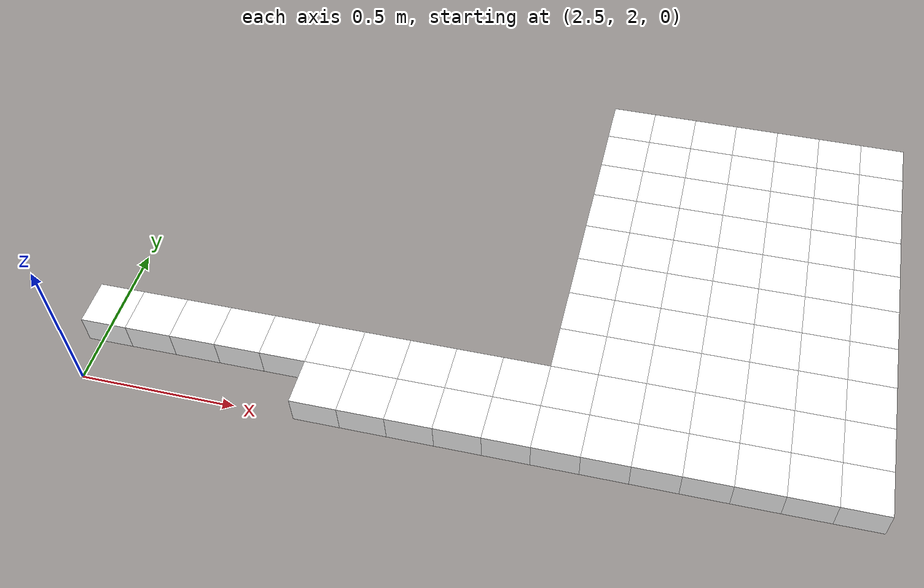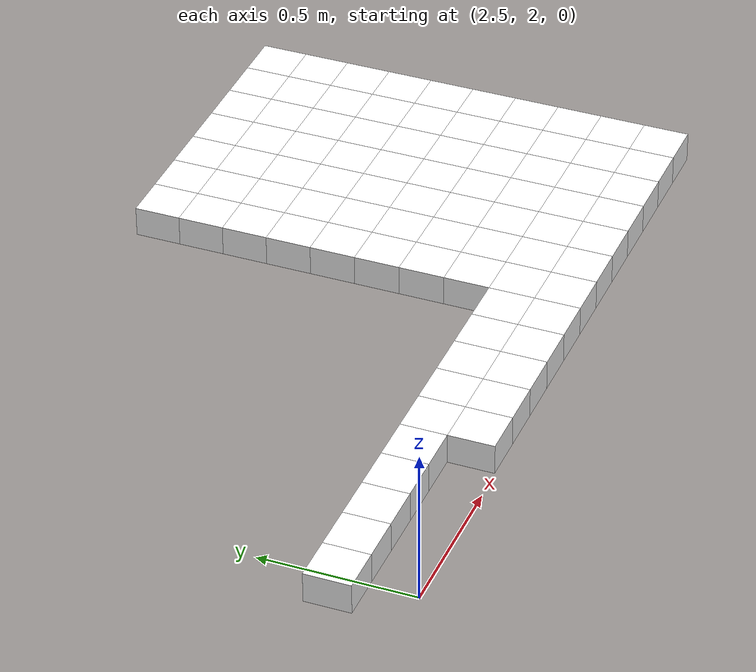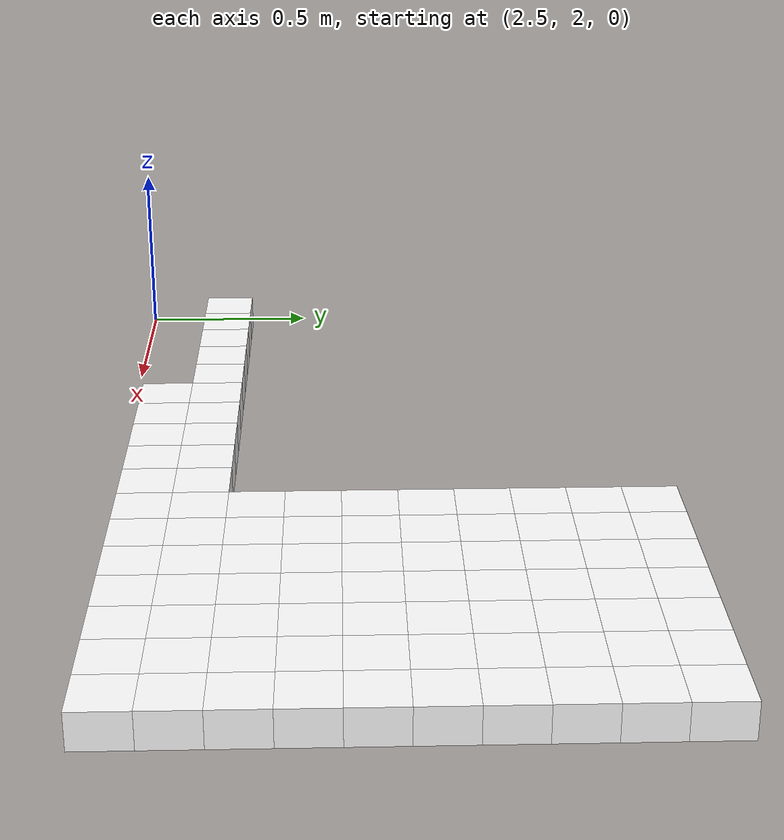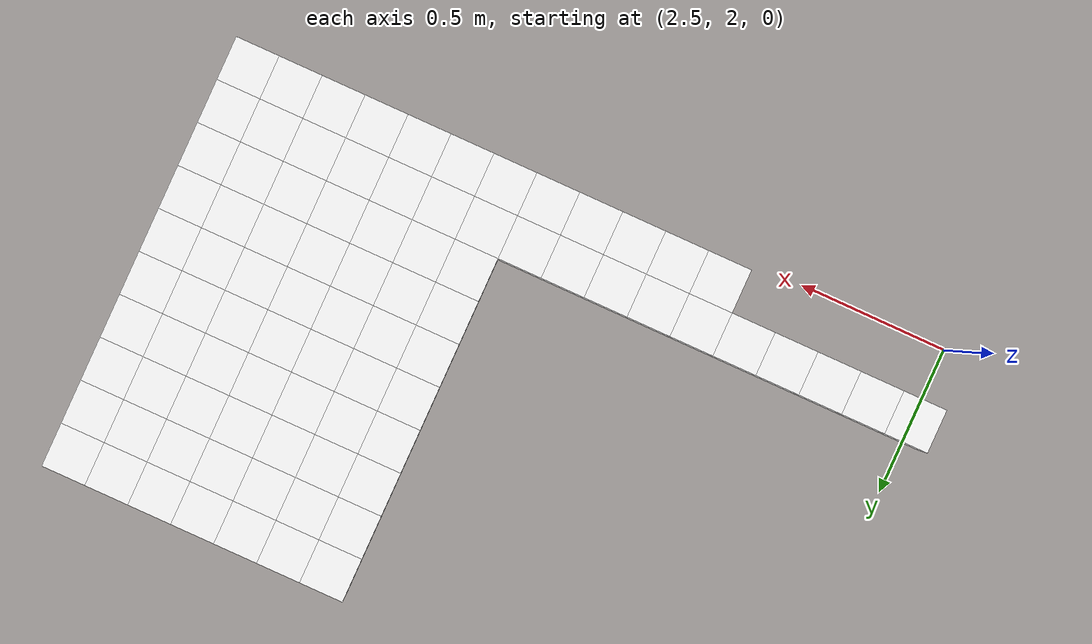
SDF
<sdf version="1.7">
 <world name="default">
  <include><uri>model://sun</uri></include>
  <model name="static_environment">
   <static>true</static>
   <link name="region_435">
    <pose>3.2500000000000027 2.0999999999999996 0.0 0.0 0.0 0.0</pose>
    <collision name="region_435_collision">
     <geometry><box><size>0.15 0.15 0.1</size></box></geometry>
     <surface><friction><ode><mu>1.0</mu><mu2>1.0</mu2></ode></friction></surface>
    </collision>
    <visual name="region_435_visual">
     <geometry><box><size>0.15 0.15 0.1</size></box></geometry>
     <material><ambient>1.0 1.0 1.0 1.0</ambient><diffuse>1.0 1.0 1.0 1.0</diffuse></material>
    </visual>
   </link>
   <link name="region_436">
    <pose>3.400000000000003 2.0999999999999996 0.0 0.0 0.0 0.0</pose>
    <collision name="region_436_collision">
     <geometry><box><size>0.15 0.15 0.1</size></box></geometry>
     <surface><friction><ode><mu>1.0</mu><mu2>1.0</mu2></ode></friction></surface>
    </collision>
    <visual name="region_436_visual">
     <geometry><box><size>0.15 0.15 0.1</size></box></geometry>
     <material><ambient>1.0 1.0 1.0 1.0</ambient><diffuse>1.0 1.0 1.0 1.0</diffuse></material>
    </visual>
   </link>
   <link name="region_437">
    <pose>3.5500000000000034 2.0999999999999996 0.0 0.0 0.0 0.0</pose>
    <collision name="region_437_collision">
     <geometry><box><size>0.15 0.15 0.1</size></box></geometry>
     <surface><friction><ode><mu>1.0</mu><mu2>1.0</mu2></ode></friction></surface>
    </collision>
    <visual name="region_437_visual">
     <geometry><box><size>0.15 0.15 0.1</size></box></geometry>
     <material><ambient>1.0 1.0 1.0 1.0</ambient><diffuse>1.0 1.0 1.0 1.0</diffuse></material>
    </visual>
   </link>
   <link name="region_438">
    <pose>3.7000000000000037 2.0999999999999996 0.0 0.0 0.0 0.0</pose>
    <collision name="region_438_collision">
     <geometry><box><size>0.15 0.15 0.1</size></box></geometry>
     <surface><friction><ode><mu>1.0</mu><mu2>1.0</mu2></ode></friction></surface>
    </collision>
    <visual name="region_438_visual">
     <geometry><box><size>0.15 0.15 0.1</size></box></geometry>
     <material><ambient>1.0 1.0 1.0 1.0</ambient><diffuse>1.0 1.0 1.0 1.0</diffuse></material>
    </visual>
   </link>
   <link name="region_439">
    <pose>3.850000000000004 2.0999999999999996 0.0 0.0 0.0 0.0</pose>
    <collision name="region_439_collision">
     <geometry><box><size>0.15 0.15 0.1</size></box></geometry>
     <surface><friction><ode><mu>1.0</mu><mu2>1.0</mu2></ode></friction></surface>
    </collision>
    <visual name="region_439_visual">
     <geometry><box><size>0.15 0.15 0.1</size></box></geometry>
     <material><ambient>1.0 1.0 1.0 1.0</ambient><diffuse>1.0 1.0 1.0 1.0</diffuse></material>
    </visual>
   </link>
   <link name="region_450">
    <pose>2.500000000000001 2.2499999999999996 0.0 0.0 0.0 0.0</pose>
    <collision name="region_450_collision">
     <geometry><box><size>0.15 0.15 0.1</size></box></geometry>
     <surface><friction><ode><mu>1.0</mu><mu2>1.0</mu2></ode></friction></surface>
    </collision>
    <visual name="region_450_visual">
     <geometry><box><size>0.15 0.15 0.1</size></box></geometry>
     <material><ambient>1.0 1.0 1.0 1.0</ambient><diffuse>1.0 1.0 1.0 1.0</diffuse></material>
    </visual>
   </link>
   <link name="region_451">
    <pose>2.6500000000000012 2.2499999999999996 0.0 0.0 0.0 0.0</pose>
    <collision name="region_451_collision">
     <geometry><box><size>0.15 0.15 0.1</size></box></geometry>
     <surface><friction><ode><mu>1.0</mu><mu2>1.0</mu2></ode></friction></surface>
    </collision>
    <visual name="region_451_visual">
     <geometry><box><size>0.15 0.15 0.1</size></box></geometry>
     <material><ambient>1.0 1.0 1.0 1.0</ambient><diffuse>1.0 1.0 1.0 1.0</diffuse></material>
    </visual>
   </link>
   <link name="region_452">
    <pose>2.8000000000000016 2.2499999999999996 0.0 0.0 0.0 0.0</pose>
    <collision name="region_452_collision">
     <geometry><box><size>0.15 0.15 0.1</size></box></geometry>
     <surface><friction><ode><mu>1.0</mu><mu2>1.0</mu2></ode></friction></surface>
    </collision>
    <visual name="region_452_visual">
     <geometry><box><size>0.15 0.15 0.1</size></box></geometry>
     <material><ambient>1.0 1.0 1.0 1.0</ambient><diffuse>1.0 1.0 1.0 1.0</diffuse></material>
    </visual>
   </link>
   <link name="region_453">
    <pose>2.950000000000002 2.2499999999999996 0.0 0.0 0.0 0.0</pose>
    <collision name="region_453_collision">
     <geometry><box><size>0.15 0.15 0.1</size></box></geometry>
     <surface><friction><ode><mu>1.0</mu><mu2>1.0</mu2></ode></friction></surface>
    </collision>
    <visual name="region_453_visual">
     <geometry><box><size>0.15 0.15 0.1</size></box></geometry>
     <material><ambient>1.0 1.0 1.0 1.0</ambient><diffuse>1.0 1.0 1.0 1.0</diffuse></material>
    </visual>
   </link>
   <link name="region_454">
    <pose>3.1000000000000023 2.2499999999999996 0.0 0.0 0.0 0.0</pose>
    <collision name="region_454_collision">
     <geometry><box><size>0.15 0.15 0.1</size></box></geometry>
     <surface><friction><ode><mu>1.0</mu><mu2>1.0</mu2></ode></friction></surface>
    </collision>
    <visual name="region_454_visual">
     <geometry><box><size>0.15 0.15 0.1</size></box></geometry>
     <material><ambient>1.0 1.0 1.0 1.0</ambient><diffuse>1.0 1.0 1.0 1.0</diffuse></material>
    </visual>
   </link>
   <link name="region_455">
    <pose>3.2500000000000027 2.2499999999999996 0.0 0.0 0.0 0.0</pose>
    <collision name="region_455_collision">
     <geometry><box><size>0.15 0.15 0.1</size></box></geometry>
     <surface><friction><ode><mu>1.0</mu><mu2>1.0</mu2></ode></friction></surface>
    </collision>
    <visual name="region_455_visual">
     <geometry><box><size>0.15 0.15 0.1</size></box></geometry>
     <material><ambient>1.0 1.0 1.0 1.0</ambient><diffuse>1.0 1.0 1.0 1.0</diffuse></material>
    </visual>
   </link>
   <link name="region_456">
    <pose>3.400000000000003 2.2499999999999996 0.0 0.0 0.0 0.0</pose>
    <collision name="region_456_collision">
     <geometry><box><size>0.15 0.15 0.1</size></box></geometry>
     <surface><friction><ode><mu>1.0</mu><mu2>1.0</mu2></ode></friction></surface>
    </collision>
    <visual name="region_456_visual">
     <geometry><box><size>0.15 0.15 0.1</size></box></geometry>
     <material><ambient>1.0 1.0 1.0 1.0</ambient><diffuse>1.0 1.0 1.0 1.0</diffuse></material>
    </visual>
   </link>
   <link name="region_457">
    <pose>3.5500000000000034 2.2499999999999996 0.0 0.0 0.0 0.0</pose>
    <collision name="region_457_collision">
     <geometry><box><size>0.15 0.15 0.1</size></box></geometry>
     <surface><friction><ode><mu>1.0</mu><mu2>1.0</mu2></ode></friction></surface>
    </collision>
    <visual name="region_457_visual">
     <geometry><box><size>0.15 0.15 0.1</size></box></geometry>
     <material><ambient>1.0 1.0 1.0 1.0</ambient><diffuse>1.0 1.0 1.0 1.0</diffuse></material>
    </visual>
   </link>
   <link name="region_458">
    <pose>3.7000000000000037 2.2499999999999996 0.0 0.0 0.0 0.0</pose>
    <collision name="region_458_collision">
     <geometry><box><size>0.15 0.15 0.1</size></box></geometry>
     <surface><friction><ode><mu>1.0</mu><mu2>1.0</mu2></ode></friction></surface>
    </collision>
    <visual name="region_458_visual">
     <geometry><box><size>0.15 0.15 0.1</size></box></geometry>
     <material><ambient>1.0 1.0 1.0 1.0</ambient><diffuse>1.0 1.0 1.0 1.0</diffuse></material>
    </visual>
   </link>
   <link name="region_459">
    <pose>3.850000000000004 2.2499999999999996 0.0 0.0 0.0 0.0</pose>
    <collision name="region_459_collision">
     <geometry><box><size>0.15 0.15 0.1</size></box></geometry>
     <surface><friction><ode><mu>1.0</mu><mu2>1.0</mu2></ode></friction></surface>
    </collision>
    <visual name="region_459_visual">
     <geometry><box><size>0.15 0.15 0.1</size></box></geometry>
     <material><ambient>1.0 1.0 1.0 1.0</ambient><diffuse>1.0 1.0 1.0 1.0</diffuse></material>
    </visual>
   </link>
   <link name="region_660">
    <pose>4.0 2.0999999999999996 0.0 0.0 0.0 0.0</pose>
    <collision name="region_660_collision">
     <geometry><box><size>0.15 0.15 0.1</size></box></geometry>
     <surface><friction><ode><mu>1.0</mu><mu2>1.0</mu2></ode></friction></surface>
    </collision>
    <visual name="region_660_visual">
     <geometry><box><size>0.15 0.15 0.1</size></box></geometry>
     <material><ambient>1.0 1.0 1.0 1.0</ambient><diffuse>1.0 1.0 1.0 1.0</diffuse></material>
    </visual>
   </link>
   <link name="region_661">
    <pose>4.15 2.0999999999999996 0.0 0.0 0.0 0.0</pose>
    <collision name="region_661_collision">
     <geometry><box><size>0.15 0.15 0.1</size></box></geometry>
     <surface><friction><ode><mu>1.0</mu><mu2>1.0</mu2></ode></friction></surface>
    </collision>
    <visual name="region_661_visual">
     <geometry><box><size>0.15 0.15 0.1</size></box></geometry>
     <material><ambient>1.0 1.0 1.0 1.0</ambient><diffuse>1.0 1.0 1.0 1.0</diffuse></material>
    </visual>
   </link>
   <link name="region_662">
    <pose>4.300000000000001 2.0999999999999996 0.0 0.0 0.0 0.0</pose>
    <collision name="region_662_collision">
     <geometry><box><size>0.15 0.15 0.1</size></box></geometry>
     <surface><friction><ode><mu>1.0</mu><mu2>1.0</mu2></ode></friction></surface>
    </collision>
    <visual name="region_662_visual">
     <geometry><box><size>0.15 0.15 0.1</size></box></geometry>
     <material><ambient>1.0 1.0 1.0 1.0</ambient><diffuse>1.0 1.0 1.0 1.0</diffuse></material>
    </visual>
   </link>
   <link name="region_663">
    <pose>4.450000000000001 2.0999999999999996 0.0 0.0 0.0 0.0</pose>
    <collision name="region_663_collision">
     <geometry><box><size>0.15 0.15 0.1</size></box></geometry>
     <surface><friction><ode><mu>1.0</mu><mu2>1.0</mu2></ode></friction></surface>
    </collision>
    <visual name="region_663_visual">
     <geometry><box><size>0.15 0.15 0.1</size></box></geometry>
     <material><ambient>1.0 1.0 1.0 1.0</ambient><diffuse>1.0 1.0 1.0 1.0</diffuse></material>
    </visual>
   </link>
   <link name="region_664">
    <pose>4.600000000000001 2.0999999999999996 0.0 0.0 0.0 0.0</pose>
    <collision name="region_664_collision">
     <geometry><box><size>0.15 0.15 0.1</size></box></geometry>
     <surface><friction><ode><mu>1.0</mu><mu2>1.0</mu2></ode></friction></surface>
    </collision>
    <visual name="region_664_visual">
     <geometry><box><size>0.15 0.15 0.1</size></box></geometry>
     <material><ambient>1.0 1.0 1.0 1.0</ambient><diffuse>1.0 1.0 1.0 1.0</diffuse></material>
    </visual>
   </link>
   <link name="region_665">
    <pose>4.750000000000002 2.0999999999999996 0.0 0.0 0.0 0.0</pose>
    <collision name="region_665_collision">
     <geometry><box><size>0.15 0.15 0.1</size></box></geometry>
     <surface><friction><ode><mu>1.0</mu><mu2>1.0</mu2></ode></friction></surface>
    </collision>
    <visual name="region_665_visual">
     <geometry><box><size>0.15 0.15 0.1</size></box></geometry>
     <material><ambient>1.0 1.0 1.0 1.0</ambient><diffuse>1.0 1.0 1.0 1.0</diffuse></material>
    </visual>
   </link>
   <link name="region_666">
    <pose>4.900000000000002 2.0999999999999996 0.0 0.0 0.0 0.0</pose>
    <collision name="region_666_collision">
     <geometry><box><size>0.15 0.15 0.1</size></box></geometry>
     <surface><friction><ode><mu>1.0</mu><mu2>1.0</mu2></ode></friction></surface>
    </collision>
    <visual name="region_666_visual">
     <geometry><box><size>0.15 0.15 0.1</size></box></geometry>
     <material><ambient>1.0 1.0 1.0 1.0</ambient><diffuse>1.0 1.0 1.0 1.0</diffuse></material>
    </visual>
   </link>
   <link name="region_680">
    <pose>4.0 2.2499999999999996 0.0 0.0 0.0 0.0</pose>
    <collision name="region_680_collision">
     <geometry><box><size>0.15 0.15 0.1</size></box></geometry>
     <surface><friction><ode><mu>1.0</mu><mu2>1.0</mu2></ode></friction></surface>
    </collision>
    <visual name="region_680_visual">
     <geometry><box><size>0.15 0.15 0.1</size></box></geometry>
     <material><ambient>1.0 1.0 1.0 1.0</ambient><diffuse>1.0 1.0 1.0 1.0</diffuse></material>
    </visual>
   </link>
   <link name="region_681">
    <pose>4.15 2.2499999999999996 0.0 0.0 0.0 0.0</pose>
    <collision name="region_681_collision">
     <geometry><box><size>0.15 0.15 0.1</size></box></geometry>
     <surface><friction><ode><mu>1.0</mu><mu2>1.0</mu2></ode></friction></surface>
    </collision>
    <visual name="region_681_visual">
     <geometry><box><size>0.15 0.15 0.1</size></box></geometry>
     <material><ambient>1.0 1.0 1.0 1.0</ambient><diffuse>1.0 1.0 1.0 1.0</diffuse></material>
    </visual>
   </link>
   <link name="region_682">
    <pose>4.300000000000001 2.2499999999999996 0.0 0.0 0.0 0.0</pose>
    <collision name="region_682_collision">
     <geometry><box><size>0.15 0.15 0.1</size></box></geometry>
     <surface><friction><ode><mu>1.0</mu><mu2>1.0</mu2></ode></friction></surface>
    </collision>
    <visual name="region_682_visual">
     <geometry><box><size>0.15 0.15 0.1</size></box></geometry>
     <material><ambient>1.0 1.0 1.0 1.0</ambient><diffuse>1.0 1.0 1.0 1.0</diffuse></material>
    </visual>
   </link>
   <link name="region_683">
    <pose>4.450000000000001 2.2499999999999996 0.0 0.0 0.0 0.0</pose>
    <collision name="region_683_collision">
     <geometry><box><size>0.15 0.15 0.1</size></box></geometry>
     <surface><friction><ode><mu>1.0</mu><mu2>1.0</mu2></ode></friction></surface>
    </collision>
    <visual name="region_683_visual">
     <geometry><box><size>0.15 0.15 0.1</size></box></geometry>
     <material><ambient>1.0 1.0 1.0 1.0</ambient><diffuse>1.0 1.0 1.0 1.0</diffuse></material>
    </visual>
   </link>
   <link name="region_684">
    <pose>4.600000000000001 2.2499999999999996 0.0 0.0 0.0 0.0</pose>
    <collision name="region_684_collision">
     <geometry><box><size>0.15 0.15 0.1</size></box></geometry>
     <surface><friction><ode><mu>1.0</mu><mu2>1.0</mu2></ode></friction></surface>
    </collision>
    <visual name="region_684_visual">
     <geometry><box><size>0.15 0.15 0.1</size></box></geometry>
     <material><ambient>1.0 1.0 1.0 1.0</ambient><diffuse>1.0 1.0 1.0 1.0</diffuse></material>
    </visual>
   </link>
   <link name="region_685">
    <pose>4.750000000000002 2.2499999999999996 0.0 0.0 0.0 0.0</pose>
    <collision name="region_685_collision">
     <geometry><box><size>0.15 0.15 0.1</size></box></geometry>
     <surface><friction><ode><mu>1.0</mu><mu2>1.0</mu2></ode></friction></surface>
    </collision>
    <visual name="region_685_visual">
     <geometry><box><size>0.15 0.15 0.1</size></box></geometry>
     <material><ambient>1.0 1.0 1.0 1.0</ambient><diffuse>1.0 1.0 1.0 1.0</diffuse></material>
    </visual>
   </link>
   <link name="region_686">
    <pose>4.900000000000002 2.2499999999999996 0.0 0.0 0.0 0.0</pose>
    <collision name="region_686_collision">
     <geometry><box><size>0.15 0.15 0.1</size></box></geometry>
     <surface><friction><ode><mu>1.0</mu><mu2>1.0</mu2></ode></friction></surface>
    </collision>
    <visual name="region_686_visual">
     <geometry><box><size>0.15 0.15 0.1</size></box></geometry>
     <material><ambient>1.0 1.0 1.0 1.0</ambient><diffuse>1.0 1.0 1.0 1.0</diffuse></material>
    </visual>
   </link>
   <link name="region_700">
    <pose>4.0 2.3999999999999995 0.0 0.0 0.0 0.0</pose>
    <collision name="region_700_collision">
     <geometry><box><size>0.15 0.15 0.1</size></box></geometry>
     <surface><friction><ode><mu>1.0</mu><mu2>1.0</mu2></ode></friction></surface>
    </collision>
    <visual name="region_700_visual">
     <geometry><box><size>0.15 0.15 0.1</size></box></geometry>
     <material><ambient>1.0 1.0 1.0 1.0</ambient><diffuse>1.0 1.0 1.0 1.0</diffuse></material>
    </visual>
   </link>
   <link name="region_701">
    <pose>4.15 2.3999999999999995 0.0 0.0 0.0 0.0</pose>
    <collision name="region_701_collision">
     <geometry><box><size>0.15 0.15 0.1</size></box></geometry>
     <surface><friction><ode><mu>1.0</mu><mu2>1.0</mu2></ode></friction></surface>
    </collision>
    <visual name="region_701_visual">
     <geometry><box><size>0.15 0.15 0.1</size></box></geometry>
     <material><ambient>1.0 1.0 1.0 1.0</ambient><diffuse>1.0 1.0 1.0 1.0</diffuse></material>
    </visual>
   </link>
   <link name="region_702">
    <pose>4.300000000000001 2.3999999999999995 0.0 0.0 0.0 0.0</pose>
    <collision name="region_702_collision">
     <geometry><box><size>0.15 0.15 0.1</size></box></geometry>
     <surface><friction><ode><mu>1.0</mu><mu2>1.0</mu2></ode></friction></surface>
    </collision>
    <visual name="region_702_visual">
     <geometry><box><size>0.15 0.15 0.1</size></box></geometry>
     <material><ambient>1.0 1.0 1.0 1.0</ambient><diffuse>1.0 1.0 1.0 1.0</diffuse></material>
    </visual>
   </link>
   <link name="region_703">
    <pose>4.450000000000001 2.3999999999999995 0.0 0.0 0.0 0.0</pose>
    <collision name="region_703_collision">
     <geometry><box><size>0.15 0.15 0.1</size></box></geometry>
     <surface><friction><ode><mu>1.0</mu><mu2>1.0</mu2></ode></friction></surface>
    </collision>
    <visual name="region_703_visual">
     <geometry><box><size>0.15 0.15 0.1</size></box></geometry>
     <material><ambient>1.0 1.0 1.0 1.0</ambient><diffuse>1.0 1.0 1.0 1.0</diffuse></material>
    </visual>
   </link>
   <link name="region_704">
    <pose>4.600000000000001 2.3999999999999995 0.0 0.0 0.0 0.0</pose>
    <collision name="region_704_collision">
     <geometry><box><size>0.15 0.15 0.1</size></box></geometry>
     <surface><friction><ode><mu>1.0</mu><mu2>1.0</mu2></ode></friction></surface>
    </collision>
    <visual name="region_704_visual">
     <geometry><box><size>0.15 0.15 0.1</size></box></geometry>
     <material><ambient>1.0 1.0 1.0 1.0</ambient><diffuse>1.0 1.0 1.0 1.0</diffuse></material>
    </visual>
   </link>
   <link name="region_705">
    <pose>4.750000000000002 2.3999999999999995 0.0 0.0 0.0 0.0</pose>
    <collision name="region_705_collision">
     <geometry><box><size>0.15 0.15 0.1</size></box></geometry>
     <surface><friction><ode><mu>1.0</mu><mu2>1.0</mu2></ode></friction></surface>
    </collision>
    <visual name="region_705_visual">
     <geometry><box><size>0.15 0.15 0.1</size></box></geometry>
     <material><ambient>1.0 1.0 1.0 1.0</ambient><diffuse>1.0 1.0 1.0 1.0</diffuse></material>
    </visual>
   </link>
   <link name="region_706">
    <pose>4.900000000000002 2.3999999999999995 0.0 0.0 0.0 0.0</pose>
    <collision name="region_706_collision">
     <geometry><box><size>0.15 0.15 0.1</size></box></geometry>
     <surface><friction><ode><mu>1.0</mu><mu2>1.0</mu2></ode></friction></surface>
    </collision>
    <visual name="region_706_visual">
     <geometry><box><size>0.15 0.15 0.1</size></box></geometry>
     <material><ambient>1.0 1.0 1.0 1.0</ambient><diffuse>1.0 1.0 1.0 1.0</diffuse></material>
    </visual>
   </link>
   <link name="region_720">
    <pose>4.0 2.5499999999999994 0.0 0.0 0.0 0.0</pose>
    <collision name="region_720_collision">
     <geometry><box><size>0.15 0.15 0.1</size></box></geometry>
     <surface><friction><ode><mu>1.0</mu><mu2>1.0</mu2></ode></friction></surface>
    </collision>
    <visual name="region_720_visual">
     <geometry><box><size>0.15 0.15 0.1</size></box></geometry>
     <material><ambient>1.0 1.0 1.0 1.0</ambient><diffuse>1.0 1.0 1.0 1.0</diffuse></material>
    </visual>
   </link>
   <link name="region_721">
    <pose>4.15 2.5499999999999994 0.0 0.0 0.0 0.0</pose>
    <collision name="region_721_collision">
     <geometry><box><size>0.15 0.15 0.1</size></box></geometry>
     <surface><friction><ode><mu>1.0</mu><mu2>1.0</mu2></ode></friction></surface>
    </collision>
    <visual name="region_721_visual">
     <geometry><box><size>0.15 0.15 0.1</size></box></geometry>
     <material><ambient>1.0 1.0 1.0 1.0</ambient><diffuse>1.0 1.0 1.0 1.0</diffuse></material>
    </visual>
   </link>
   <link name="region_722">
    <pose>4.300000000000001 2.5499999999999994 0.0 0.0 0.0 0.0</pose>
    <collision name="region_722_collision">
     <geometry><box><size>0.15 0.15 0.1</size></box></geometry>
     <surface><friction><ode><mu>1.0</mu><mu2>1.0</mu2></ode></friction></surface>
    </collision>
    <visual name="region_722_visual">
     <geometry><box><size>0.15 0.15 0.1</size></box></geometry>
     <material><ambient>1.0 1.0 1.0 1.0</ambient><diffuse>1.0 1.0 1.0 1.0</diffuse></material>
    </visual>
   </link>
   <link name="region_723">
    <pose>4.450000000000001 2.5499999999999994 0.0 0.0 0.0 0.0</pose>
    <collision name="region_723_collision">
     <geometry><box><size>0.15 0.15 0.1</size></box></geometry>
     <surface><friction><ode><mu>1.0</mu><mu2>1.0</mu2></ode></friction></surface>
    </collision>
    <visual name="region_723_visual">
     <geometry><box><size>0.15 0.15 0.1</size></box></geometry>
     <material><ambient>1.0 1.0 1.0 1.0</ambient><diffuse>1.0 1.0 1.0 1.0</diffuse></material>
    </visual>
   </link>
   <link name="region_724">
    <pose>4.600000000000001 2.5499999999999994 0.0 0.0 0.0 0.0</pose>
    <collision name="region_724_collision">
     <geometry><box><size>0.15 0.15 0.1</size></box></geometry>
     <surface><friction><ode><mu>1.0</mu><mu2>1.0</mu2></ode></friction></surface>
    </collision>
    <visual name="region_724_visual">
     <geometry><box><size>0.15 0.15 0.1</size></box></geometry>
     <material><ambient>1.0 1.0 1.0 1.0</ambient><diffuse>1.0 1.0 1.0 1.0</diffuse></material>
    </visual>
   </link>
   <link name="region_725">
    <pose>4.750000000000002 2.5499999999999994 0.0 0.0 0.0 0.0</pose>
    <collision name="region_725_collision">
     <geometry><box><size>0.15 0.15 0.1</size></box></geometry>
     <surface><friction><ode><mu>1.0</mu><mu2>1.0</mu2></ode></friction></surface>
    </collision>
    <visual name="region_725_visual">
     <geometry><box><size>0.15 0.15 0.1</size></box></geometry>
     <material><ambient>1.0 1.0 1.0 1.0</ambient><diffuse>1.0 1.0 1.0 1.0</diffuse></material>
    </visual>
   </link>
   <link name="region_726">
    <pose>4.900000000000002 2.5499999999999994 0.0 0.0 0.0 0.0</pose>
    <collision name="region_726_collision">
     <geometry><box><size>0.15 0.15 0.1</size></box></geometry>
     <surface><friction><ode><mu>1.0</mu><mu2>1.0</mu2></ode></friction></surface>
    </collision>
    <visual name="region_726_visual">
     <geometry><box><size>0.15 0.15 0.1</size></box></geometry>
     <material><ambient>1.0 1.0 1.0 1.0</ambient><diffuse>1.0 1.0 1.0 1.0</diffuse></material>
    </visual>
   </link>
   <link name="region_740">
    <pose>4.0 2.6999999999999997 0.0 0.0 0.0 0.0</pose>
    <collision name="region_740_collision">
     <geometry><box><size>0.15 0.15 0.1</size></box></geometry>
     <surface><friction><ode><mu>1.0</mu><mu2>1.0</mu2></ode></friction></surface>
    </collision>
    <visual name="region_740_visual">
     <geometry><box><size>0.15 0.15 0.1</size></box></geometry>
     <material><ambient>1.0 1.0 1.0 1.0</ambient><diffuse>1.0 1.0 1.0 1.0</diffuse></material>
    </visual>
   </link>
   <link name="region_741">
    <pose>4.15 2.6999999999999997 0.0 0.0 0.0 0.0</pose>
    <collision name="region_741_collision">
     <geometry><box><size>0.15 0.15 0.1</size></box></geometry>
     <surface><friction><ode><mu>1.0</mu><mu2>1.0</mu2></ode></friction></surface>
    </collision>
    <visual name="region_741_visual">
     <geometry><box><size>0.15 0.15 0.1</size></box></geometry>
     <material><ambient>1.0 1.0 1.0 1.0</ambient><diffuse>1.0 1.0 1.0 1.0</diffuse></material>
    </visual>
   </link>
   <link name="region_742">
    <pose>4.300000000000001 2.6999999999999997 0.0 0.0 0.0 0.0</pose>
    <collision name="region_742_collision">
     <geometry><box><size>0.15 0.15 0.1</size></box></geometry>
     <surface><friction><ode><mu>1.0</mu><mu2>1.0</mu2></ode></friction></surface>
    </collision>
    <visual name="region_742_visual">
     <geometry><box><size>0.15 0.15 0.1</size></box></geometry>
     <material><ambient>1.0 1.0 1.0 1.0</ambient><diffuse>1.0 1.0 1.0 1.0</diffuse></material>
    </visual>
   </link>
   <link name="region_743">
    <pose>4.450000000000001 2.6999999999999997 0.0 0.0 0.0 0.0</pose>
    <collision name="region_743_collision">
     <geometry><box><size>0.15 0.15 0.1</size></box></geometry>
     <surface><friction><ode><mu>1.0</mu><mu2>1.0</mu2></ode></friction></surface>
    </collision>
    <visual name="region_743_visual">
     <geometry><box><size>0.15 0.15 0.1</size></box></geometry>
     <material><ambient>1.0 1.0 1.0 1.0</ambient><diffuse>1.0 1.0 1.0 1.0</diffuse></material>
    </visual>
   </link>
   <link name="region_744">
    <pose>4.600000000000001 2.6999999999999997 0.0 0.0 0.0 0.0</pose>
    <collision name="region_744_collision">
     <geometry><box><size>0.15 0.15 0.1</size></box></geometry>
     <surface><friction><ode><mu>1.0</mu><mu2>1.0</mu2></ode></friction></surface>
    </collision>
    <visual name="region_744_visual">
     <geometry><box><size>0.15 0.15 0.1</size></box></geometry>
     <material><ambient>1.0 1.0 1.0 1.0</ambient><diffuse>1.0 1.0 1.0 1.0</diffuse></material>
    </visual>
   </link>
   <link name="region_745">
    <pose>4.750000000000002 2.6999999999999997 0.0 0.0 0.0 0.0</pose>
    <collision name="region_745_collision">
     <geometry><box><size>0.15 0.15 0.1</size></box></geometry>
     <surface><friction><ode><mu>1.0</mu><mu2>1.0</mu2></ode></friction></surface>
    </collision>
    <visual name="region_745_visual">
     <geometry><box><size>0.15 0.15 0.1</size></box></geometry>
     <material><ambient>1.0 1.0 1.0 1.0</ambient><diffuse>1.0 1.0 1.0 1.0</diffuse></material>
    </visual>
   </link>
   <link name="region_746">
    <pose>4.900000000000002 2.6999999999999997 0.0 0.0 0.0 0.0</pose>
    <collision name="region_746_collision">
     <geometry><box><size>0.15 0.15 0.1</size></box></geometry>
     <surface><friction><ode><mu>1.0</mu><mu2>1.0</mu2></ode></friction></surface>
    </collision>
    <visual name="region_746_visual">
     <geometry><box><size>0.15 0.15 0.1</size></box></geometry>
     <material><ambient>1.0 1.0 1.0 1.0</ambient><diffuse>1.0 1.0 1.0 1.0</diffuse></material>
    </visual>
   </link>
   <link name="region_760">
    <pose>4.0 2.8499999999999996 0.0 0.0 0.0 0.0</pose>
    <collision name="region_760_collision">
     <geometry><box><size>0.15 0.15 0.1</size></box></geometry>
     <surface><friction><ode><mu>1.0</mu><mu2>1.0</mu2></ode></friction></surface>
    </collision>
    <visual name="region_760_visual">
     <geometry><box><size>0.15 0.15 0.1</size></box></geometry>
     <material><ambient>1.0 1.0 1.0 1.0</ambient><diffuse>1.0 1.0 1.0 1.0</diffuse></material>
    </visual>
   </link>
   <link name="region_761">
    <pose>4.15 2.8499999999999996 0.0 0.0 0.0 0.0</pose>
    <collision name="region_761_collision">
     <geometry><box><size>0.15 0.15 0.1</size></box></geometry>
     <surface><friction><ode><mu>1.0</mu><mu2>1.0</mu2></ode></friction></surface>
    </collision>
    <visual name="region_761_visual">
     <geometry><box><size>0.15 0.15 0.1</size></box></geometry>
     <material><ambient>1.0 1.0 1.0 1.0</ambient><diffuse>1.0 1.0 1.0 1.0</diffuse></material>
    </visual>
   </link>
   <link name="region_762">
    <pose>4.300000000000001 2.8499999999999996 0.0 0.0 0.0 0.0</pose>
    <collision name="region_762_collision">
     <geometry><box><size>0.15 0.15 0.1</size></box></geometry>
     <surface><friction><ode><mu>1.0</mu><mu2>1.0</mu2></ode></friction></surface>
    </collision>
    <visual name="region_762_visual">
     <geometry><box><size>0.15 0.15 0.1</size></box></geometry>
     <material><ambient>1.0 1.0 1.0 1.0</ambient><diffuse>1.0 1.0 1.0 1.0</diffuse></material>
    </visual>
   </link>
   <link name="region_763">
    <pose>4.450000000000001 2.8499999999999996 0.0 0.0 0.0 0.0</pose>
    <collision name="region_763_collision">
     <geometry><box><size>0.15 0.15 0.1</size></box></geometry>
     <surface><friction><ode><mu>1.0</mu><mu2>1.0</mu2></ode></friction></surface>
    </collision>
    <visual name="region_763_visual">
     <geometry><box><size>0.15 0.15 0.1</size></box></geometry>
     <material><ambient>1.0 1.0 1.0 1.0</ambient><diffuse>1.0 1.0 1.0 1.0</diffuse></material>
    </visual>
   </link>
   <link name="region_764">
    <pose>4.600000000000001 2.8499999999999996 0.0 0.0 0.0 0.0</pose>
    <collision name="region_764_collision">
     <geometry><box><size>0.15 0.15 0.1</size></box></geometry>
     <surface><friction><ode><mu>1.0</mu><mu2>1.0</mu2></ode></friction></surface>
    </collision>
    <visual name="region_764_visual">
     <geometry><box><size>0.15 0.15 0.1</size></box></geometry>
     <material><ambient>1.0 1.0 1.0 1.0</ambient><diffuse>1.0 1.0 1.0 1.0</diffuse></material>
    </visual>
   </link>
   <link name="region_765">
    <pose>4.750000000000002 2.8499999999999996 0.0 0.0 0.0 0.0</pose>
    <collision name="region_765_collision">
     <geometry><box><size>0.15 0.15 0.1</size></box></geometry>
     <surface><friction><ode><mu>1.0</mu><mu2>1.0</mu2></ode></friction></surface>
    </collision>
    <visual name="region_765_visual">
     <geometry><box><size>0.15 0.15 0.1</size></box></geometry>
     <material><ambient>1.0 1.0 1.0 1.0</ambient><diffuse>1.0 1.0 1.0 1.0</diffuse></material>
    </visual>
   </link>
   <link name="region_766">
    <pose>4.900000000000002 2.8499999999999996 0.0 0.0 0.0 0.0</pose>
    <collision name="region_766_collision">
     <geometry><box><size>0.15 0.15 0.1</size></box></geometry>
     <surface><friction><ode><mu>1.0</mu><mu2>1.0</mu2></ode></friction></surface>
    </collision>
    <visual name="region_766_visual">
     <geometry><box><size>0.15 0.15 0.1</size></box></geometry>
     <material><ambient>1.0 1.0 1.0 1.0</ambient><diffuse>1.0 1.0 1.0 1.0</diffuse></material>
    </visual>
   </link>
   <link name="region_780">
    <pose>4.0 2.9999999999999996 0.0 0.0 0.0 0.0</pose>
    <collision name="region_780_collision">
     <geometry><box><size>0.15 0.15 0.1</size></box></geometry>
     <surface><friction><ode><mu>1.0</mu><mu2>1.0</mu2></ode></friction></surface>
    </collision>
    <visual name="region_780_visual">
     <geometry><box><size>0.15 0.15 0.1</size></box></geometry>
     <material><ambient>1.0 1.0 1.0 1.0</ambient><diffuse>1.0 1.0 1.0 1.0</diffuse></material>
    </visual>
   </link>
   <link name="region_781">
    <pose>4.15 2.9999999999999996 0.0 0.0 0.0 0.0</pose>
    <collision name="region_781_collision">
     <geometry><box><size>0.15 0.15 0.1</size></box></geometry>
     <surface><friction><ode><mu>1.0</mu><mu2>1.0</mu2></ode></friction></surface>
    </collision>
    <visual name="region_781_visual">
     <geometry><box><size>0.15 0.15 0.1</size></box></geometry>
     <material><ambient>1.0 1.0 1.0 1.0</ambient><diffuse>1.0 1.0 1.0 1.0</diffuse></material>
    </visual>
   </link>
   <link name="region_782">
    <pose>4.300000000000001 2.9999999999999996 0.0 0.0 0.0 0.0</pose>
    <collision name="region_782_collision">
     <geometry><box><size>0.15 0.15 0.1</size></box></geometry>
     <surface><friction><ode><mu>1.0</mu><mu2>1.0</mu2></ode></friction></surface>
    </collision>
    <visual name="region_782_visual">
     <geometry><box><size>0.15 0.15 0.1</size></box></geometry>
     <material><ambient>1.0 1.0 1.0 1.0</ambient><diffuse>1.0 1.0 1.0 1.0</diffuse></material>
    </visual>
   </link>
   <link name="region_783">
    <pose>4.450000000000001 2.9999999999999996 0.0 0.0 0.0 0.0</pose>
    <collision name="region_783_collision">
     <geometry><box><size>0.15 0.15 0.1</size></box></geometry>
     <surface><friction><ode><mu>1.0</mu><mu2>1.0</mu2></ode></friction></surface>
    </collision>
    <visual name="region_783_visual">
     <geometry><box><size>0.15 0.15 0.1</size></box></geometry>
     <material><ambient>1.0 1.0 1.0 1.0</ambient><diffuse>1.0 1.0 1.0 1.0</diffuse></material>
    </visual>
   </link>
   <link name="region_784">
    <pose>4.600000000000001 2.9999999999999996 0.0 0.0 0.0 0.0</pose>
    <collision name="region_784_collision">
     <geometry><box><size>0.15 0.15 0.1</size></box></geometry>
     <surface><friction><ode><mu>1.0</mu><mu2>1.0</mu2></ode></friction></surface>
    </collision>
    <visual name="region_784_visual">
     <geometry><box><size>0.15 0.15 0.1</size></box></geometry>
     <material><ambient>1.0 1.0 1.0 1.0</ambient><diffuse>1.0 1.0 1.0 1.0</diffuse></material>
    </visual>
   </link>
   <link name="region_785">
    <pose>4.750000000000002 2.9999999999999996 0.0 0.0 0.0 0.0</pose>
    <collision name="region_785_collision">
     <geometry><box><size>0.15 0.15 0.1</size></box></geometry>
     <surface><friction><ode><mu>1.0</mu><mu2>1.0</mu2></ode></friction></surface>
    </collision>
    <visual name="region_785_visual">
     <geometry><box><size>0.15 0.15 0.1</size></box></geometry>
     <material><ambient>1.0 1.0 1.0 1.0</ambient><diffuse>1.0 1.0 1.0 1.0</diffuse></material>
    </visual>
   </link>
   <link name="region_786">
    <pose>4.900000000000002 2.9999999999999996 0.0 0.0 0.0 0.0</pose>
    <collision name="region_786_collision">
     <geometry><box><size>0.15 0.15 0.1</size></box></geometry>
     <surface><friction><ode><mu>1.0</mu><mu2>1.0</mu2></ode></friction></surface>
    </collision>
    <visual name="region_786_visual">
     <geometry><box><size>0.15 0.15 0.1</size></box></geometry>
     <material><ambient>1.0 1.0 1.0 1.0</ambient><diffuse>1.0 1.0 1.0 1.0</diffuse></material>
    </visual>
   </link>
   <link name="region_800">
    <pose>4.0 3.1499999999999995 0.0 0.0 0.0 0.0</pose>
    <collision name="region_800_collision">
     <geometry><box><size>0.15 0.15 0.1</size></box></geometry>
     <surface><friction><ode><mu>1.0</mu><mu2>1.0</mu2></ode></friction></surface>
    </collision>
    <visual name="region_800_visual">
     <geometry><box><size>0.15 0.15 0.1</size></box></geometry>
     <material><ambient>1.0 1.0 1.0 1.0</ambient><diffuse>1.0 1.0 1.0 1.0</diffuse></material>
    </visual>
   </link>
   <link name="region_801">
    <pose>4.15 3.1499999999999995 0.0 0.0 0.0 0.0</pose>
    <collision name="region_801_collision">
     <geometry><box><size>0.15 0.15 0.1</size></box></geometry>
     <surface><friction><ode><mu>1.0</mu><mu2>1.0</mu2></ode></friction></surface>
    </collision>
    <visual name="region_801_visual">
     <geometry><box><size>0.15 0.15 0.1</size></box></geometry>
     <material><ambient>1.0 1.0 1.0 1.0</ambient><diffuse>1.0 1.0 1.0 1.0</diffuse></material>
    </visual>
   </link>
   <link name="region_802">
    <pose>4.300000000000001 3.1499999999999995 0.0 0.0 0.0 0.0</pose>
    <collision name="region_802_collision">
     <geometry><box><size>0.15 0.15 0.1</size></box></geometry>
     <surface><friction><ode><mu>1.0</mu><mu2>1.0</mu2></ode></friction></surface>
    </collision>
    <visual name="region_802_visual">
     <geometry><box><size>0.15 0.15 0.1</size></box></geometry>
     <material><ambient>1.0 1.0 1.0 1.0</ambient><diffuse>1.0 1.0 1.0 1.0</diffuse></material>
    </visual>
   </link>
   <link name="region_803">
    <pose>4.450000000000001 3.1499999999999995 0.0 0.0 0.0 0.0</pose>
    <collision name="region_803_collision">
     <geometry><box><size>0.15 0.15 0.1</size></box></geometry>
     <surface><friction><ode><mu>1.0</mu><mu2>1.0</mu2></ode></friction></surface>
    </collision>
    <visual name="region_803_visual">
     <geometry><box><size>0.15 0.15 0.1</size></box></geometry>
     <material><ambient>1.0 1.0 1.0 1.0</ambient><diffuse>1.0 1.0 1.0 1.0</diffuse></material>
    </visual>
   </link>
   <link name="region_804">
    <pose>4.600000000000001 3.1499999999999995 0.0 0.0 0.0 0.0</pose>
    <collision name="region_804_collision">
     <geometry><box><size>0.15 0.15 0.1</size></box></geometry>
     <surface><friction><ode><mu>1.0</mu><mu2>1.0</mu2></ode></friction></surface>
    </collision>
    <visual name="region_804_visual">
     <geometry><box><size>0.15 0.15 0.1</size></box></geometry>
     <material><ambient>1.0 1.0 1.0 1.0</ambient><diffuse>1.0 1.0 1.0 1.0</diffuse></material>
    </visual>
   </link>
   <link name="region_805">
    <pose>4.750000000000002 3.1499999999999995 0.0 0.0 0.0 0.0</pose>
    <collision name="region_805_collision">
     <geometry><box><size>0.15 0.15 0.1</size></box></geometry>
     <surface><friction><ode><mu>1.0</mu><mu2>1.0</mu2></ode></friction></surface>
    </collision>
    <visual name="region_805_visual">
     <geometry><box><size>0.15 0.15 0.1</size></box></geometry>
     <material><ambient>1.0 1.0 1.0 1.0</ambient><diffuse>1.0 1.0 1.0 1.0</diffuse></material>
    </visual>
   </link>
   <link name="region_806">
    <pose>4.900000000000002 3.1499999999999995 0.0 0.0 0.0 0.0</pose>
    <collision name="region_806_collision">
     <geometry><box><size>0.15 0.15 0.1</size></box></geometry>
     <surface><friction><ode><mu>1.0</mu><mu2>1.0</mu2></ode></friction></surface>
    </collision>
    <visual name="region_806_visual">
     <geometry><box><size>0.15 0.15 0.1</size></box></geometry>
     <material><ambient>1.0 1.0 1.0 1.0</ambient><diffuse>1.0 1.0 1.0 1.0</diffuse></material>
    </visual>
   </link>
   <link name="region_820">
    <pose>4.0 3.2999999999999994 0.0 0.0 0.0 0.0</pose>
    <collision name="region_820_collision">
     <geometry><box><size>0.15 0.15 0.1</size></box></geometry>
     <surface><friction><ode><mu>1.0</mu><mu2>1.0</mu2></ode></friction></surface>
    </collision>
    <visual name="region_820_visual">
     <geometry><box><size>0.15 0.15 0.1</size></box></geometry>
     <material><ambient>1.0 1.0 1.0 1.0</ambient><diffuse>1.0 1.0 1.0 1.0</diffuse></material>
    </visual>
   </link>
   <link name="region_821">
    <pose>4.15 3.2999999999999994 0.0 0.0 0.0 0.0</pose>
    <collision name="region_821_collision">
     <geometry><box><size>0.15 0.15 0.1</size></box></geometry>
     <surface><friction><ode><mu>1.0</mu><mu2>1.0</mu2></ode></friction></surface>
    </collision>
    <visual name="region_821_visual">
     <geometry><box><size>0.15 0.15 0.1</size></box></geometry>
     <material><ambient>1.0 1.0 1.0 1.0</ambient><diffuse>1.0 1.0 1.0 1.0</diffuse></material>
    </visual>
   </link>
   <link name="region_822">
    <pose>4.300000000000001 3.2999999999999994 0.0 0.0 0.0 0.0</pose>
    <collision name="region_822_collision">
     <geometry><box><size>0.15 0.15 0.1</size></box></geometry>
     <surface><friction><ode><mu>1.0</mu><mu2>1.0</mu2></ode></friction></surface>
    </collision>
    <visual name="region_822_visual">
     <geometry><box><size>0.15 0.15 0.1</size></box></geometry>
     <material><ambient>1.0 1.0 1.0 1.0</ambient><diffuse>1.0 1.0 1.0 1.0</diffuse></material>
    </visual>
   </link>
   <link name="region_823">
    <pose>4.450000000000001 3.2999999999999994 0.0 0.0 0.0 0.0</pose>
    <collision name="region_823_collision">
     <geometry><box><size>0.15 0.15 0.1</size></box></geometry>
     <surface><friction><ode><mu>1.0</mu><mu2>1.0</mu2></ode></friction></surface>
    </collision>
    <visual name="region_823_visual">
     <geometry><box><size>0.15 0.15 0.1</size></box></geometry>
     <material><ambient>1.0 1.0 1.0 1.0</ambient><diffuse>1.0 1.0 1.0 1.0</diffuse></material>
    </visual>
   </link>
   <link name="region_824">
    <pose>4.600000000000001 3.2999999999999994 0.0 0.0 0.0 0.0</pose>
    <collision name="region_824_collision">
     <geometry><box><size>0.15 0.15 0.1</size></box></geometry>
     <surface><friction><ode><mu>1.0</mu><mu2>1.0</mu2></ode></friction></surface>
    </collision>
    <visual name="region_824_visual">
     <geometry><box><size>0.15 0.15 0.1</size></box></geometry>
     <material><ambient>1.0 1.0 1.0 1.0</ambient><diffuse>1.0 1.0 1.0 1.0</diffuse></material>
    </visual>
   </link>
   <link name="region_825">
    <pose>4.750000000000002 3.2999999999999994 0.0 0.0 0.0 0.0</pose>
    <collision name="region_825_collision">
     <geometry><box><size>0.15 0.15 0.1</size></box></geometry>
     <surface><friction><ode><mu>1.0</mu><mu2>1.0</mu2></ode></friction></surface>
    </collision>
    <visual name="region_825_visual">
     <geometry><box><size>0.15 0.15 0.1</size></box></geometry>
     <material><ambient>1.0 1.0 1.0 1.0</ambient><diffuse>1.0 1.0 1.0 1.0</diffuse></material>
    </visual>
   </link>
   <link name="region_826">
    <pose>4.900000000000002 3.2999999999999994 0.0 0.0 0.0 0.0</pose>
    <collision name="region_826_collision">
     <geometry><box><size>0.15 0.15 0.1</size></box></geometry>
     <surface><friction><ode><mu>1.0</mu><mu2>1.0</mu2></ode></friction></surface>
    </collision>
    <visual name="region_826_visual">
     <geometry><box><size>0.15 0.15 0.1</size></box></geometry>
     <material><ambient>1.0 1.0 1.0 1.0</ambient><diffuse>1.0 1.0 1.0 1.0</diffuse></material>
    </visual>
   </link>
   <link name="region_840">
    <pose>4.0 3.4499999999999993 0.0 0.0 0.0 0.0</pose>
    <collision name="region_840_collision">
     <geometry><box><size>0.15 0.15 0.1</size></box></geometry>
     <surface><friction><ode><mu>1.0</mu><mu2>1.0</mu2></ode></friction></surface>
    </collision>
    <visual name="region_840_visual">
     <geometry><box><size>0.15 0.15 0.1</size></box></geometry>
     <material><ambient>1.0 1.0 1.0 1.0</ambient><diffuse>1.0 1.0 1.0 1.0</diffuse></material>
    </visual>
   </link>
   <link name="region_841">
    <pose>4.15 3.4499999999999993 0.0 0.0 0.0 0.0</pose>
    <collision name="region_841_collision">
     <geometry><box><size>0.15 0.15 0.1</size></box></geometry>
     <surface><friction><ode><mu>1.0</mu><mu2>1.0</mu2></ode></friction></surface>
    </collision>
    <visual name="region_841_visual">
     <geometry><box><size>0.15 0.15 0.1</size></box></geometry>
     <material><ambient>1.0 1.0 1.0 1.0</ambient><diffuse>1.0 1.0 1.0 1.0</diffuse></material>
    </visual>
   </link>
   <link name="region_842">
    <pose>4.300000000000001 3.4499999999999993 0.0 0.0 0.0 0.0</pose>
    <collision name="region_842_collision">
     <geometry><box><size>0.15 0.15 0.1</size></box></geometry>
     <surface><friction><ode><mu>1.0</mu><mu2>1.0</mu2></ode></friction></surface>
    </collision>
    <visual name="region_842_visual">
     <geometry><box><size>0.15 0.15 0.1</size></box></geometry>
     <material><ambient>1.0 1.0 1.0 1.0</ambient><diffuse>1.0 1.0 1.0 1.0</diffuse></material>
    </visual>
   </link>
   <link name="region_843">
    <pose>4.450000000000001 3.4499999999999993 0.0 0.0 0.0 0.0</pose>
    <collision name="region_843_collision">
     <geometry><box><size>0.15 0.15 0.1</size></box></geometry>
     <surface><friction><ode><mu>1.0</mu><mu2>1.0</mu2></ode></friction></surface>
    </collision>
    <visual name="region_843_visual">
     <geometry><box><size>0.15 0.15 0.1</size></box></geometry>
     <material><ambient>1.0 1.0 1.0 1.0</ambient><diffuse>1.0 1.0 1.0 1.0</diffuse></material>
    </visual>
   </link>
   <link name="region_844">
    <pose>4.600000000000001 3.4499999999999993 0.0 0.0 0.0 0.0</pose>
    <collision name="region_844_collision">
     <geometry><box><size>0.15 0.15 0.1</size></box></geometry>
     <surface><friction><ode><mu>1.0</mu><mu2>1.0</mu2></ode></friction></surface>
    </collision>
    <visual name="region_844_visual">
     <geometry><box><size>0.15 0.15 0.1</size></box></geometry>
     <material><ambient>1.0 1.0 1.0 1.0</ambient><diffuse>1.0 1.0 1.0 1.0</diffuse></material>
    </visual>
   </link>
   <link name="region_845">
    <pose>4.750000000000002 3.4499999999999993 0.0 0.0 0.0 0.0</pose>
    <collision name="region_845_collision">
     <geometry><box><size>0.15 0.15 0.1</size></box></geometry>
     <surface><friction><ode><mu>1.0</mu><mu2>1.0</mu2></ode></friction></surface>
    </collision>
    <visual name="region_845_visual">
     <geometry><box><size>0.15 0.15 0.1</size></box></geometry>
     <material><ambient>1.0 1.0 1.0 1.0</ambient><diffuse>1.0 1.0 1.0 1.0</diffuse></material>
    </visual>
   </link>
   <link name="region_846">
    <pose>4.900000000000002 3.4499999999999993 0.0 0.0 0.0 0.0</pose>
    <collision name="region_846_collision">
     <geometry><box><size>0.15 0.15 0.1</size></box></geometry>
     <surface><friction><ode><mu>1.0</mu><mu2>1.0</mu2></ode></friction></surface>
    </collision>
    <visual name="region_846_visual">
     <geometry><box><size>0.15 0.15 0.1</size></box></geometry>
     <material><ambient>1.0 1.0 1.0 1.0</ambient><diffuse>1.0 1.0 1.0 1.0</diffuse></material>
    </visual>
   </link>
  </model>
 </world>
</sdf>
